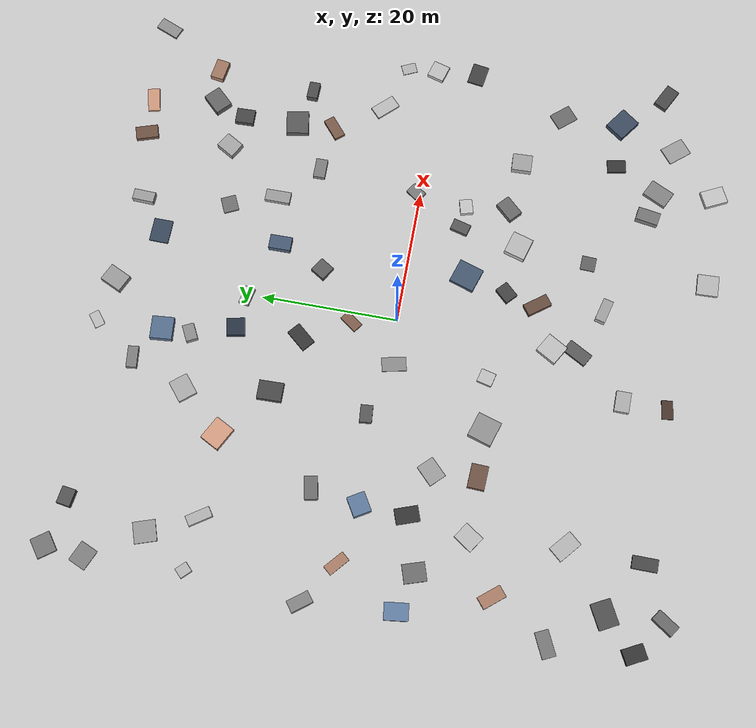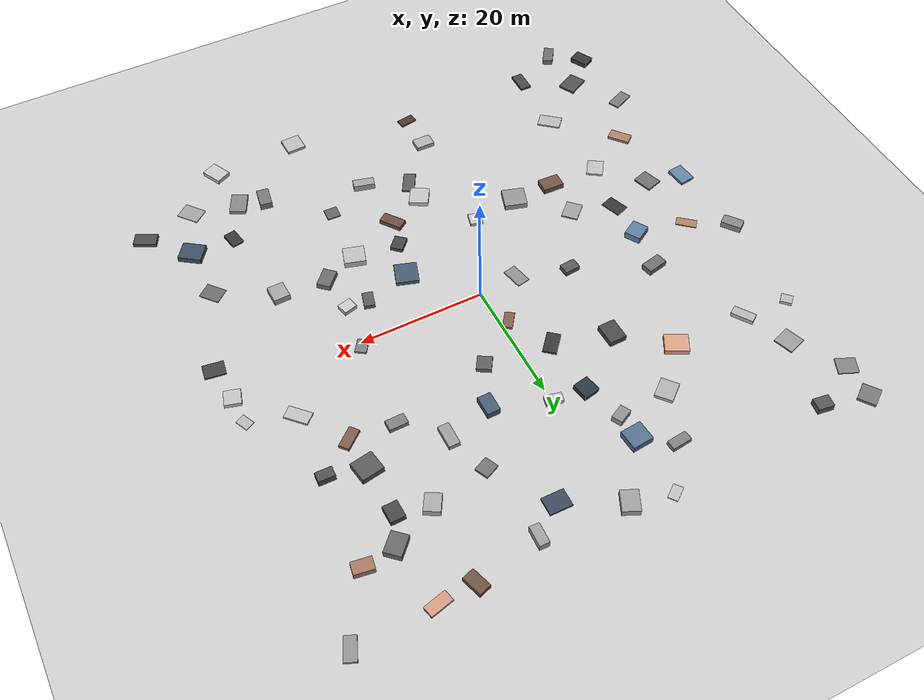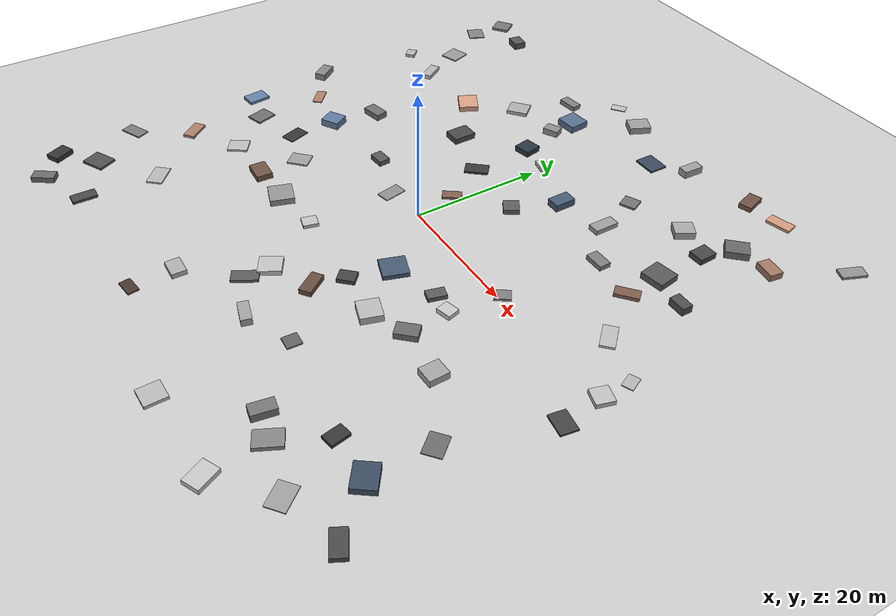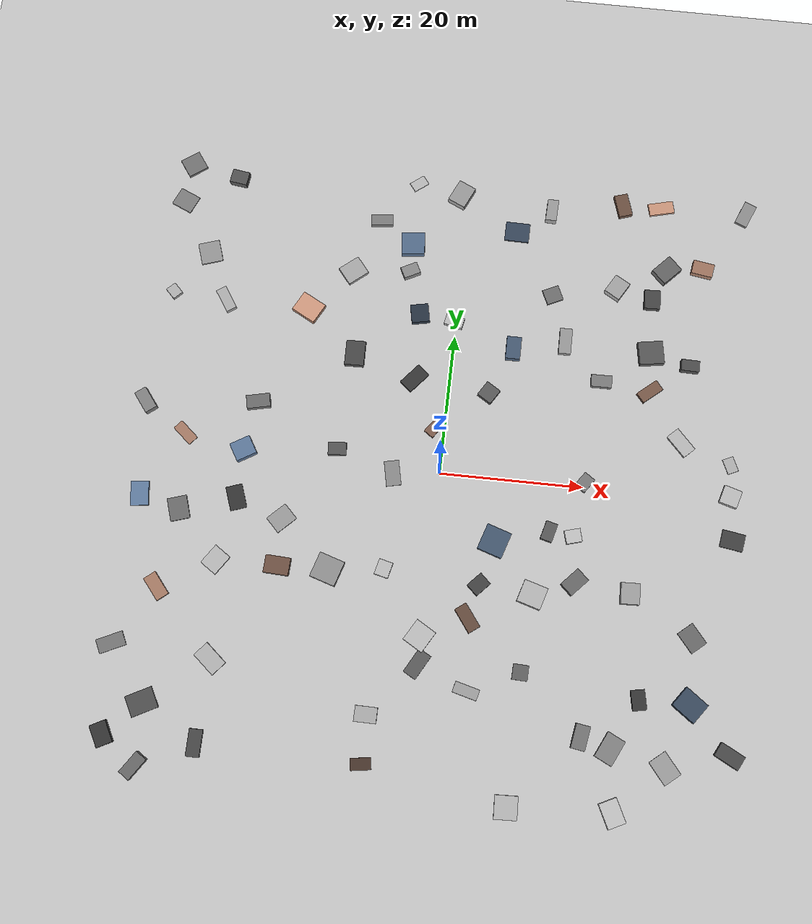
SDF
<?xml version="1.0" encoding="UTF-8"?>
<sdf version="1.9">
  <world name="world_demo_probe">
    <physics type="ode">
      <max_step_size>0.004</max_step_size>
      <real_time_factor>1.0</real_time_factor>
      <real_time_update_rate>250</real_time_update_rate>
    </physics>
    <gravity>0 0 -9.8</gravity>
    <magnetic_field>6e-06 2.3e-05 -4.2e-05</magnetic_field>
    <atmosphere type="adiabatic"/>
    <scene>
      <grid>false</grid>
      <ambient>0.4 0.4 0.4 1</ambient>
      <background>0.7 0.7 0.7 1</background>
      <shadows>true</shadows>
    </scene>
    <model name="ground_plane">
      <static>true</static>
      <link name="link">
        <collision name="collision">
          <geometry><plane><normal>0 0 1</normal><size>1 1</size></plane></geometry>
          <surface><friction><ode/></friction><bounce/><contact/></surface>
        </collision>
        <visual name="visual">
          <geometry><plane><normal>0 0 1</normal><size>500 500</size></plane></geometry>
          <material>
            <ambient>0.8 0.8 0.8 1</ambient>
            <diffuse>0.8 0.8 0.8 1</diffuse>
            <specular>0.8 0.8 0.8 1</specular>
          </material>
        </visual>
        <pose>0 0 0 0 -0 0</pose>
        <inertial><pose>0 0 0 0 -0 0</pose><mass>1</mass>
          <inertia><ixx>1</ixx><ixy>0</ixy><ixz>0</ixz><iyy>1</iyy><iyz>0</iyz><izz>1</izz></inertia>
        </inertial>
        <enable_wind>false</enable_wind>
      </link>
      <pose>0 0 0 0 -0 0</pose>
      <self_collide>false</self_collide>
    </model>
    <light name="sunUTC" type="directional">
      <pose>0 0 500 0 -0 0</pose>
      <cast_shadows>true</cast_shadows>
      <intensity>1</intensity>
      <direction>0.001 0.625 -0.78</direction>
      <diffuse>0.904 0.904 0.904 1</diffuse>
      <specular>0.271 0.271 0.271 1</specular>
      <attenuation><range>2000</range><linear>0</linear><constant>1</constant><quadratic>0</quadratic></attenuation>
      <spot><inner_angle>0</inner_angle><outer_angle>0</outer_angle><falloff>0</falloff></spot>
    </light>
    <spherical_coordinates>
      <surface_model>EARTH_WGS84</surface_model>
      <world_frame_orientation>ENU</world_frame_orientation>
      <latitude_deg>47.397971057728974</latitude_deg>
      <longitude_deg> 8.546163739800146</longitude_deg>
      <elevation>0</elevation>
    </spherical_coordinates>
    <!-- 84 statycznych brył wizualnych (tekstura przestrzenna, par? R2) -->
    <model name="tex_0">
      <static>true</static>
      <pose>-41.137 -40.159 0.403 0 0 0.478</pose>
      <link name="l">
        <visual name="v">
          <geometry><box><size>2.264 3.094 0.807</size></box></geometry>
          <material>
            <ambient>0.206 0.206 0.206 1</ambient>
            <diffuse>0.206 0.206 0.206 1</diffuse>
            <specular>0.1 0.1 0.1 1</specular>
          </material>
        </visual>
      </link>
    </model>
    <model name="tex_1">
      <static>true</static>
      <pose>-41.920 -28.083 0.104 0 0 2.013</pose>
      <link name="l">
        <visual name="v">
          <geometry><box><size>1.991 3.763 0.208</size></box></geometry>
          <material>
            <ambient>0.472 0.472 0.472 1</ambient>
            <diffuse>0.472 0.472 0.472 1</diffuse>
            <specular>0.1 0.1 0.1 1</specular>
          </material>
        </visual>
      </link>
    </model>
    <model name="tex_2">
      <static>true</static>
      <pose>-41.253 -7.342 0.228 0 0 0.120</pose>
      <link name="l">
        <visual name="v">
          <geometry><box><size>2.489 3.451 0.456</size></box></geometry>
          <material>
            <ambient>0.395 0.508 0.649 1</ambient>
            <diffuse>0.395 0.508 0.649 1</diffuse>
            <specular>0.1 0.1 0.1 1</specular>
          </material>
        </visual>
      </link>
    </model>
    <model name="tex_3">
      <static>true</static>
      <pose>-42.364 5.896 0.552 0 0 0.651</pose>
      <link name="l">
        <visual name="v">
          <geometry><box><size>1.788 3.298 1.104</size></box></geometry>
          <material>
            <ambient>0.524 0.524 0.524 1</ambient>
            <diffuse>0.524 0.524 0.524 1</diffuse>
            <specular>0.1 0.1 0.1 1</specular>
          </material>
        </visual>
      </link>
    </model>
    <model name="tex_4">
      <static>true</static>
      <pose>-40.961 22.566 0.267 0 0 2.347</pose>
      <link name="l">
        <visual name="v">
          <geometry><box><size>1.824 1.576 0.533</size></box></geometry>
          <material>
            <ambient>0.718 0.718 0.718 1</ambient>
            <diffuse>0.718 0.718 0.718 1</diffuse>
            <specular>0.1 0.1 0.1 1</specular>
          </material>
        </visual>
      </link>
    </model>
    <model name="tex_5">
      <static>true</static>
      <pose>-41.461 36.745 0.092 0 0 1.161</pose>
      <link name="l">
        <visual name="v">
          <geometry><box><size>2.701 3.118 0.185</size></box></geometry>
          <material>
            <ambient>0.507 0.507 0.507 1</ambient>
            <diffuse>0.507 0.507 0.507 1</diffuse>
            <specular>0.1 0.1 0.1 1</specular>
          </material>
        </visual>
      </link>
    </model>
    <model name="tex_6">
      <static>true</static>
      <pose>-41.051 42.476 0.215 0 0 0.624</pose>
      <link name="l">
        <visual name="v">
          <geometry><box><size>2.969 2.847 0.430</size></box></geometry>
          <material>
            <ambient>0.465 0.465 0.465 1</ambient>
            <diffuse>0.465 0.465 0.465 1</diffuse>
            <specular>0.1 0.1 0.1 1</specular>
          </material>
        </visual>
      </link>
    </model>
    <model name="tex_7">
      <static>true</static>
      <pose>-36.256 -43.765 0.451 0 0 2.549</pose>
      <link name="l">
        <visual name="v">
          <geometry><box><size>1.746 3.466 0.903</size></box></geometry>
          <material>
            <ambient>0.417 0.417 0.417 1</ambient>
            <diffuse>0.417 0.417 0.417 1</diffuse>
            <specular>0.1 0.1 0.1 1</specular>
          </material>
        </visual>
      </link>
    </model>
    <model name="tex_8">
      <static>true</static>
      <pose>-36.514 -35.487 0.184 0 0 2.053</pose>
      <link name="l">
        <visual name="v">
          <geometry><box><size>2.949 3.783 0.368</size></box></geometry>
          <material>
            <ambient>0.312 0.312 0.312 1</ambient>
            <diffuse>0.312 0.312 0.312 1</diffuse>
            <specular>0.1 0.1 0.1 1</specular>
          </material>
        </visual>
      </link>
    </model>
    <model name="tex_9">
      <static>true</static>
      <pose>-36.981 -19.903 0.218 0 0 2.257</pose>
      <link name="l">
        <visual name="v">
          <geometry><box><size>3.619 1.867 0.436</size></box></geometry>
          <material>
            <ambient>0.671 0.496 0.408 1</ambient>
            <diffuse>0.671 0.496 0.408 1</diffuse>
            <specular>0.1 0.1 0.1 1</specular>
          </material>
        </visual>
      </link>
    </model>
    <model name="tex_10">
      <static>true</static>
      <pose>-35.586 -8.854 0.146 0 0 1.880</pose>
      <link name="l">
        <visual name="v">
          <geometry><box><size>3.256 2.732 0.292</size></box></geometry>
          <material>
            <ambient>0.431 0.431 0.431 1</ambient>
            <diffuse>0.431 0.431 0.431 1</diffuse>
            <specular>0.1 0.1 0.1 1</specular>
          </material>
        </visual>
      </link>
    </model>
    <model name="tex_11">
      <static>true</static>
      <pose>-36.247 1.969 0.081 0 0 2.430</pose>
      <link name="l">
        <visual name="v">
          <geometry><box><size>3.335 1.543 0.161</size></box></geometry>
          <material>
            <ambient>0.673 0.498 0.410 1</ambient>
            <diffuse>0.673 0.498 0.410 1</diffuse>
            <specular>0.1 0.1 0.1 1</specular>
          </material>
        </visual>
      </link>
    </model>
    <model name="tex_12">
      <static>true</static>
      <pose>-33.303 22.082 0.358 0 0 0.588</pose>
      <link name="l">
        <visual name="v">
          <geometry><box><size>1.540 3.562 0.716</size></box></geometry>
          <material>
            <ambient>0.703 0.703 0.703 1</ambient>
            <diffuse>0.703 0.703 0.703 1</diffuse>
            <specular>0.1 0.1 0.1 1</specular>
          </material>
        </visual>
      </link>
    </model>
    <model name="tex_13">
      <static>true</static>
      <pose>-36.687 29.087 0.121 0 0 1.892</pose>
      <link name="l">
        <visual name="v">
          <geometry><box><size>3.201 3.079 0.242</size></box></geometry>
          <material>
            <ambient>0.605 0.605 0.605 1</ambient>
            <diffuse>0.605 0.605 0.605 1</diffuse>
            <specular>0.1 0.1 0.1 1</specular>
          </material>
        </visual>
      </link>
    </model>
    <model name="tex_14">
      <static>true</static>
      <pose>-33.922 40.861 0.561 0 0 2.995</pose>
      <link name="l">
        <visual name="v">
          <geometry><box><size>2.501 1.990 1.123</size></box></geometry>
          <material>
            <ambient>0.331 0.331 0.331 1</ambient>
            <diffuse>0.331 0.331 0.331 1</diffuse>
            <specular>0.1 0.1 0.1 1</specular>
          </material>
        </visual>
      </link>
    </model>
    <model name="tex_15">
      <static>true</static>
      <pose>-28.677 -40.035 0.203 0 0 3.134</pose>
      <link name="l">
        <visual name="v">
          <geometry><box><size>1.850 3.663 0.405</size></box></geometry>
          <material>
            <ambient>0.281 0.281 0.281 1</ambient>
            <diffuse>0.281 0.281 0.281 1</diffuse>
            <specular>0.1 0.1 0.1 1</specular>
          </material>
        </visual>
      </link>
    </model>
    <model name="tex_16">
      <static>true</static>
      <pose>-28.266 -28.858 0.131 0 0 0.863</pose>
      <link name="l">
        <visual name="v">
          <geometry><box><size>2.425 3.794 0.262</size></box></geometry>
          <material>
            <ambient>0.716 0.716 0.716 1</ambient>
            <diffuse>0.716 0.716 0.716 1</diffuse>
            <specular>0.1 0.1 0.1 1</specular>
          </material>
        </visual>
      </link>
    </model>
    <model name="tex_17">
      <static>true</static>
      <pose>-29.438 -15.434 0.164 0 0 2.548</pose>
      <link name="l">
        <visual name="v">
          <geometry><box><size>2.661 3.119 0.328</size></box></geometry>
          <material>
            <ambient>0.740 0.740 0.740 1</ambient>
            <diffuse>0.740 0.740 0.740 1</diffuse>
            <specular>0.1 0.1 0.1 1</specular>
          </material>
        </visual>
      </link>
    </model>
    <model name="tex_18">
      <static>true</static>
      <pose>-27.859 -6.459 0.067 0 0 1.911</pose>
      <link name="l">
        <visual name="v">
          <geometry><box><size>3.435 2.317 0.134</size></box></geometry>
          <material>
            <ambient>0.209 0.209 0.209 1</ambient>
            <diffuse>0.209 0.209 0.209 1</diffuse>
            <specular>0.1 0.1 0.1 1</specular>
          </material>
        </visual>
      </link>
    </model>
    <model name="tex_19">
      <static>true</static>
      <pose>-27.711 0.384 0.590 0 0 2.111</pose>
      <link name="l">
        <visual name="v">
          <geometry><box><size>2.654 2.963 1.179</size></box></geometry>
          <material>
            <ambient>0.379 0.487 0.623 1</ambient>
            <diffuse>0.379 0.487 0.623 1</diffuse>
            <specular>0.1 0.1 0.1 1</specular>
          </material>
        </visual>
      </link>
    </model>
    <model name="tex_20">
      <static>true</static>
      <pose>-26.583 7.452 0.493 0 0 1.788</pose>
      <link name="l">
        <visual name="v">
          <geometry><box><size>1.907 3.305 0.985</size></box></geometry>
          <material>
            <ambient>0.435 0.435 0.435 1</ambient>
            <diffuse>0.435 0.435 0.435 1</diffuse>
            <specular>0.1 0.1 0.1 1</specular>
          </material>
        </visual>
      </link>
    </model>
    <model name="tex_21">
      <static>true</static>
      <pose>-20.853 -15.336 0.459 0 0 3.095</pose>
      <link name="l">
        <visual name="v">
          <geometry><box><size>3.473 2.453 0.918</size></box></geometry>
          <material>
            <ambient>0.443 0.327 0.270 1</ambient>
            <diffuse>0.443 0.327 0.270 1</diffuse>
            <specular>0.1 0.1 0.1 1</specular>
          </material>
        </visual>
      </link>
    </model>
    <model name="tex_22">
      <static>true</static>
      <pose>-21.170 -8.746 0.129 0 0 2.346</pose>
      <link name="l">
        <visual name="v">
          <geometry><box><size>2.642 3.262 0.258</size></box></geometry>
          <material>
            <ambient>0.623 0.623 0.623 1</ambient>
            <diffuse>0.623 0.623 0.623 1</diffuse>
            <specular>0.1 0.1 0.1 1</specular>
          </material>
        </visual>
      </link>
    </model>
    <model name="tex_23">
      <static>true</static>
      <pose>-21.289 22.067 0.421 0 0 1.085</pose>
      <link name="l">
        <visual name="v">
          <geometry><box><size>3.061 3.689 0.843</size></box></geometry>
          <material>
            <ambient>0.844 0.624 0.514 1</ambient>
            <diffuse>0.844 0.624 0.514 1</diffuse>
            <specular>0.1 0.1 0.1 1</specular>
          </material>
        </visual>
      </link>
    </model>
    <model name="tex_24">
      <static>true</static>
      <pose>-13.934 -15.150 0.478 0 0 1.268</pose>
      <link name="l">
        <visual name="v">
          <geometry><box><size>3.579 3.681 0.956</size></box></geometry>
          <material>
            <ambient>0.580 0.580 0.580 1</ambient>
            <diffuse>0.580 0.580 0.580 1</diffuse>
            <specular>0.1 0.1 0.1 1</specular>
          </material>
        </visual>
      </link>
    </model>
    <model name="tex_25">
      <static>true</static>
      <pose>-14.687 1.809 0.409 0 0 0.085</pose>
      <link name="l">
        <visual name="v">
          <geometry><box><size>2.544 1.776 0.818</size></box></geometry>
          <material>
            <ambient>0.344 0.344 0.344 1</ambient>
            <diffuse>0.344 0.344 0.344 1</diffuse>
            <specular>0.1 0.1 0.1 1</specular>
          </material>
        </visual>
      </link>
    </model>
    <model name="tex_26">
      <static>true</static>
      <pose>-13.866 15.922 0.478 0 0 0.018</pose>
      <link name="l">
        <visual name="v">
          <geometry><box><size>2.734 3.575 0.956</size></box></geometry>
          <material>
            <ambient>0.285 0.285 0.285 1</ambient>
            <diffuse>0.285 0.285 0.285 1</diffuse>
            <specular>0.1 0.1 0.1 1</specular>
          </material>
        </visual>
      </link>
    </model>
    <model name="tex_27">
      <static>true</static>
      <pose>-15.593 28.385 0.292 0 0 0.689</pose>
      <link name="l">
        <visual name="v">
          <geometry><box><size>3.279 2.839 0.583</size></box></geometry>
          <material>
            <ambient>0.681 0.681 0.681 1</ambient>
            <diffuse>0.681 0.681 0.681 1</diffuse>
            <specular>0.1 0.1 0.1 1</specular>
          </material>
        </visual>
      </link>
    </model>
    <model name="tex_28">
      <static>true</static>
      <pose>-12.397 36.555 0.390 0 0 1.678</pose>
      <link name="l">
        <visual name="v">
          <geometry><box><size>1.529 3.150 0.780</size></box></geometry>
          <material>
            <ambient>0.502 0.502 0.502 1</ambient>
            <diffuse>0.502 0.502 0.502 1</diffuse>
            <specular>0.1 0.1 0.1 1</specular>
          </material>
        </visual>
      </link>
    </model>
    <model name="tex_29">
      <static>true</static>
      <pose>-6.324 -40.404 0.102 0 0 1.721</pose>
      <link name="l">
        <visual name="v">
          <geometry><box><size>1.626 2.769 0.204</size></box></geometry>
          <material>
            <ambient>0.292 0.216 0.178 1</ambient>
            <diffuse>0.292 0.216 0.178 1</diffuse>
            <specular>0.1 0.1 0.1 1</specular>
          </material>
        </visual>
      </link>
    </model>
    <model name="tex_30">
      <static>true</static>
      <pose>-6.416 -33.925 0.374 0 0 1.560</pose>
      <link name="l">
        <visual name="v">
          <geometry><box><size>2.135 3.033 0.748</size></box></geometry>
          <material>
            <ambient>0.683 0.683 0.683 1</ambient>
            <diffuse>0.683 0.683 0.683 1</diffuse>
            <specular>0.1 0.1 0.1 1</specular>
          </material>
        </visual>
      </link>
    </model>
    <model name="tex_31">
      <static>true</static>
      <pose>-6.298 -14.206 0.265 0 0 1.333</pose>
      <link name="l">
        <visual name="v">
          <geometry><box><size>2.227 1.981 0.530</size></box></geometry>
          <material>
            <ambient>0.757 0.757 0.757 1</ambient>
            <diffuse>0.757 0.757 0.757 1</diffuse>
            <specular>0.1 0.1 0.1 1</specular>
          </material>
        </visual>
      </link>
    </model>
    <model name="tex_32">
      <static>true</static>
      <pose>-6.615 -0.742 0.076 0 0 0.210</pose>
      <link name="l">
        <visual name="v">
          <geometry><box><size>2.084 3.562 0.151</size></box></geometry>
          <material>
            <ambient>0.556 0.556 0.556 1</ambient>
            <diffuse>0.556 0.556 0.556 1</diffuse>
            <specular>0.1 0.1 0.1 1</specular>
          </material>
        </visual>
      </link>
    </model>
    <model name="tex_33">
      <static>true</static>
      <pose>-5.055 13.235 0.173 0 0 2.437</pose>
      <link name="l">
        <visual name="v">
          <geometry><box><size>2.130 3.598 0.346</size></box></geometry>
          <material>
            <ambient>0.218 0.218 0.218 1</ambient>
            <diffuse>0.218 0.218 0.218 1</diffuse>
            <specular>0.1 0.1 0.1 1</specular>
          </material>
        </visual>
      </link>
    </model>
    <model name="tex_34">
      <static>true</static>
      <pose>-5.336 22.822 0.455 0 0 1.771</pose>
      <link name="l">
        <visual name="v">
          <geometry><box><size>2.647 2.567 0.911</size></box></geometry>
          <material>
            <ambient>0.162 0.208 0.266 1</ambient>
            <diffuse>0.162 0.208 0.266 1</diffuse>
            <specular>0.1 0.1 0.1 1</specular>
          </material>
        </visual>
      </link>
    </model>
    <model name="tex_35">
      <static>true</static>
      <pose>-7.390 29.149 0.509 0 0 2.042</pose>
      <link name="l">
        <visual name="v">
          <geometry><box><size>1.694 2.439 1.017</size></box></geometry>
          <material>
            <ambient>0.559 0.559 0.559 1</ambient>
            <diffuse>0.559 0.559 0.559 1</diffuse>
            <specular>0.1 0.1 0.1 1</specular>
          </material>
        </visual>
      </link>
    </model>
    <model name="tex_36">
      <static>true</static>
      <pose>-7.456 33.255 0.553 0 0 0.085</pose>
      <link name="l">
        <visual name="v">
          <geometry><box><size>3.316 3.214 1.106</size></box></geometry>
          <material>
            <ambient>0.339 0.436 0.557 1</ambient>
            <diffuse>0.339 0.436 0.557 1</diffuse>
            <specular>0.1 0.1 0.1 1</specular>
          </material>
        </visual>
      </link>
    </model>
    <model name="tex_37">
      <static>true</static>
      <pose>-7.641 43.052 0.068 0 0 0.654</pose>
      <link name="l">
        <visual name="v">
          <geometry><box><size>2.350 1.506 0.135</size></box></geometry>
          <material>
            <ambient>0.744 0.744 0.744 1</ambient>
            <diffuse>0.744 0.744 0.744 1</diffuse>
            <specular>0.1 0.1 0.1 1</specular>
          </material>
        </visual>
      </link>
    </model>
    <model name="tex_38">
      <static>true</static>
      <pose>-0.285 -26.573 0.219 0 0 1.063</pose>
      <link name="l">
        <visual name="v">
          <geometry><box><size>3.783 1.981 0.438</size></box></geometry>
          <material>
            <ambient>0.361 0.361 0.361 1</ambient>
            <diffuse>0.361 0.361 0.361 1</diffuse>
            <specular>0.1 0.1 0.1 1</specular>
          </material>
        </visual>
      </link>
    </model>
    <model name="tex_39">
      <static>true</static>
      <pose>-0.397 -22.822 0.357 0 0 2.612</pose>
      <link name="l">
        <visual name="v">
          <geometry><box><size>3.120 3.303 0.714</size></box></geometry>
          <material>
            <ambient>0.760 0.760 0.760 1</ambient>
            <diffuse>0.760 0.760 0.760 1</diffuse>
            <specular>0.1 0.1 0.1 1</specular>
          </material>
        </visual>
      </link>
    </model>
    <model name="tex_40">
      <static>true</static>
      <pose>-1.386 6.486 0.192 0 0 2.519</pose>
      <link name="l">
        <visual name="v">
          <geometry><box><size>1.553 2.902 0.383</size></box></geometry>
          <material>
            <ambient>0.506 0.374 0.308 1</ambient>
            <diffuse>0.506 0.374 0.308 1</diffuse>
            <specular>0.1 0.1 0.1 1</specular>
          </material>
        </visual>
      </link>
    </model>
    <model name="tex_41">
      <static>true</static>
      <pose>-0.334 22.233 0.320 0 0 2.941</pose>
      <link name="l">
        <visual name="v">
          <geometry><box><size>2.676 1.504 0.640</size></box></geometry>
          <material>
            <ambient>0.755 0.755 0.755 1</ambient>
            <diffuse>0.755 0.755 0.755 1</diffuse>
            <specular>0.1 0.1 0.1 1</specular>
          </material>
        </visual>
      </link>
    </model>
    <model name="tex_42">
      <static>true</static>
      <pose>-1.191 41.675 0.541 0 0 2.709</pose>
      <link name="l">
        <visual name="v">
          <geometry><box><size>2.661 3.355 1.083</size></box></geometry>
          <material>
            <ambient>0.618 0.618 0.618 1</ambient>
            <diffuse>0.618 0.618 0.618 1</diffuse>
            <specular>0.1 0.1 0.1 1</specular>
          </material>
        </visual>
      </link>
    </model>
    <model name="tex_43">
      <static>true</static>
      <pose>6.593 -29.442 0.547 0 0 2.887</pose>
      <link name="l">
        <visual name="v">
          <geometry><box><size>3.452 1.522 1.093</size></box></geometry>
          <material>
            <ambient>0.636 0.636 0.636 1</ambient>
            <diffuse>0.636 0.636 0.636 1</diffuse>
            <specular>0.1 0.1 0.1 1</specular>
          </material>
        </visual>
      </link>
    </model>
    <model name="tex_44">
      <static>true</static>
      <pose>5.807 -19.749 0.394 0 0 0.636</pose>
      <link name="l">
        <visual name="v">
          <geometry><box><size>1.811 3.758 0.787</size></box></geometry>
          <material>
            <ambient>0.409 0.302 0.249 1</ambient>
            <diffuse>0.409 0.302 0.249 1</diffuse>
            <specular>0.1 0.1 0.1 1</specular>
          </material>
        </visual>
      </link>
    </model>
    <model name="tex_45">
      <static>true</static>
      <pose>6.906 -15.021 0.322 0 0 2.391</pose>
      <link name="l">
        <visual name="v">
          <geometry><box><size>2.010 2.539 0.644</size></box></geometry>
          <material>
            <ambient>0.266 0.266 0.266 1</ambient>
            <diffuse>0.266 0.266 0.266 1</diffuse>
            <specular>0.1 0.1 0.1 1</specular>
          </material>
        </visual>
      </link>
    </model>
    <model name="tex_46">
      <static>true</static>
      <pose>8.464 -8.837 0.347 0 0 1.259</pose>
      <link name="l">
        <visual name="v">
          <geometry><box><size>3.747 3.598 0.695</size></box></geometry>
          <material>
            <ambient>0.272 0.349 0.447 1</ambient>
            <diffuse>0.272 0.349 0.447 1</diffuse>
            <specular>0.1 0.1 0.1 1</specular>
          </material>
        </visual>
      </link>
    </model>
    <model name="tex_47">
      <static>true</static>
      <pose>5.648 12.154 0.392 0 0 2.582</pose>
      <link name="l">
        <visual name="v">
          <geometry><box><size>2.287 2.346 0.784</size></box></geometry>
          <material>
            <ambient>0.366 0.366 0.366 1</ambient>
            <diffuse>0.366 0.366 0.366 1</diffuse>
            <specular>0.1 0.1 0.1 1</specular>
          </material>
        </visual>
      </link>
    </model>
    <model name="tex_48">
      <static>true</static>
      <pose>8.478 19.022 0.558 0 0 0.003</pose>
      <link name="l">
        <visual name="v">
          <geometry><box><size>2.073 3.250 1.116</size></box></geometry>
          <material>
            <ambient>0.279 0.359 0.459 1</ambient>
            <diffuse>0.279 0.359 0.459 1</diffuse>
            <specular>0.1 0.1 0.1 1</specular>
          </material>
        </visual>
      </link>
    </model>
    <model name="tex_49">
      <static>true</static>
      <pose>7.433 36.927 0.137 0 0 3.126</pose>
      <link name="l">
        <visual name="v">
          <geometry><box><size>3.517 2.835 0.274</size></box></geometry>
          <material>
            <ambient>0.220 0.282 0.361 1</ambient>
            <diffuse>0.220 0.282 0.361 1</diffuse>
            <specular>0.1 0.1 0.1 1</specular>
          </material>
        </visual>
      </link>
    </model>
    <model name="tex_50">
      <static>true</static>
      <pose>13.343 -43.893 0.234 0 0 1.603</pose>
      <link name="l">
        <visual name="v">
          <geometry><box><size>3.128 3.114 0.468</size></box></geometry>
          <material>
            <ambient>0.727 0.727 0.727 1</ambient>
            <diffuse>0.727 0.727 0.727 1</diffuse>
            <specular>0.1 0.1 0.1 1</specular>
          </material>
        </visual>
      </link>
    </model>
    <model name="tex_51">
      <static>true</static>
      <pose>13.652 -26.212 0.096 0 0 1.529</pose>
      <link name="l">
        <visual name="v">
          <geometry><box><size>2.124 2.134 0.193</size></box></geometry>
          <material>
            <ambient>0.388 0.388 0.388 1</ambient>
            <diffuse>0.388 0.388 0.388 1</diffuse>
            <specular>0.1 0.1 0.1 1</specular>
          </material>
        </visual>
      </link>
    </model>
    <model name="tex_52">
      <static>true</static>
      <pose>14.297 -15.667 0.528 0 0 2.851</pose>
      <link name="l">
        <visual name="v">
          <geometry><box><size>3.393 3.142 1.056</size></box></geometry>
          <material>
            <ambient>0.731 0.731 0.731 1</ambient>
            <diffuse>0.731 0.731 0.731 1</diffuse>
            <specular>0.1 0.1 0.1 1</specular>
          </material>
        </visual>
      </link>
    </model>
    <model name="tex_53">
      <static>true</static>
      <pose>15.825 -6.716 0.339 0 0 2.883</pose>
      <link name="l">
        <visual name="v">
          <geometry><box><size>1.672 2.667 0.679</size></box></geometry>
          <material>
            <ambient>0.356 0.356 0.356 1</ambient>
            <diffuse>0.356 0.356 0.356 1</diffuse>
            <specular>0.1 0.1 0.1 1</specular>
          </material>
        </visual>
      </link>
    </model>
    <model name="tex_54">
      <static>true</static>
      <pose>15.767 20.906 0.376 0 0 0.000</pose>
      <link name="l">
        <visual name="v">
          <geometry><box><size>1.745 3.745 0.753</size></box></geometry>
          <material>
            <ambient>0.614 0.614 0.614 1</ambient>
            <diffuse>0.614 0.614 0.614 1</diffuse>
            <specular>0.1 0.1 0.1 1</specular>
          </material>
        </visual>
      </link>
    </model>
    <model name="tex_55">
      <static>true</static>
      <pose>13.403 27.801 0.150 0 0 0.441</pose>
      <link name="l">
        <visual name="v">
          <geometry><box><size>2.420 2.242 0.300</size></box></geometry>
          <material>
            <ambient>0.447 0.447 0.447 1</ambient>
            <diffuse>0.447 0.447 0.447 1</diffuse>
            <specular>0.1 0.1 0.1 1</specular>
          </material>
        </visual>
      </link>
    </model>
    <model name="tex_56">
      <static>true</static>
      <pose>12.143 40.527 0.580 0 0 1.531</pose>
      <link name="l">
        <visual name="v">
          <geometry><box><size>3.204 1.557 1.160</size></box></geometry>
          <material>
            <ambient>0.623 0.623 0.623 1</ambient>
            <diffuse>0.623 0.623 0.623 1</diffuse>
            <specular>0.1 0.1 0.1 1</specular>
          </material>
        </visual>
      </link>
    </model>
    <model name="tex_57">
      <static>true</static>
      <pose>22.333 -33.831 0.572 0 0 2.979</pose>
      <link name="l">
        <visual name="v">
          <geometry><box><size>1.933 3.334 1.144</size></box></geometry>
          <material>
            <ambient>0.463 0.463 0.463 1</ambient>
            <diffuse>0.463 0.463 0.463 1</diffuse>
            <specular>0.1 0.1 0.1 1</specular>
          </material>
        </visual>
      </link>
    </model>
    <model name="tex_58">
      <static>true</static>
      <pose>19.888 -13.357 0.474 0 0 0.825</pose>
      <link name="l">
        <visual name="v">
          <geometry><box><size>3.219 2.189 0.948</size></box></geometry>
          <material>
            <ambient>0.417 0.417 0.417 1</ambient>
            <diffuse>0.417 0.417 0.417 1</diffuse>
            <specular>0.1 0.1 0.1 1</specular>
          </material>
        </visual>
      </link>
    </model>
    <model name="tex_59">
      <static>true</static>
      <pose>19.192 -7.010 0.350 0 0 1.835</pose>
      <link name="l">
        <visual name="v">
          <geometry><box><size>1.870 2.213 0.700</size></box></geometry>
          <material>
            <ambient>0.779 0.779 0.779 1</ambient>
            <diffuse>0.779 0.779 0.779 1</diffuse>
            <specular>0.1 0.1 0.1 1</specular>
          </material>
        </visual>
      </link>
    </model>
    <model name="tex_60">
      <static>true</static>
      <pose>20.214 0.745 0.181 0 0 2.533</pose>
      <link name="l">
        <visual name="v">
          <geometry><box><size>1.776 2.357 0.361</size></box></geometry>
          <material>
            <ambient>0.489 0.489 0.489 1</ambient>
            <diffuse>0.489 0.489 0.489 1</diffuse>
            <specular>0.1 0.1 0.1 1</specular>
          </material>
        </visual>
      </link>
    </model>
    <model name="tex_61">
      <static>true</static>
      <pose>21.348 15.541 0.371 0 0 0.008</pose>
      <link name="l">
        <visual name="v">
          <geometry><box><size>2.934 1.750 0.742</size></box></geometry>
          <material>
            <ambient>0.497 0.497 0.497 1</ambient>
            <diffuse>0.497 0.497 0.497 1</diffuse>
            <specular>0.1 0.1 0.1 1</specular>
          </material>
        </visual>
      </link>
    </model>
    <model name="tex_62">
      <static>true</static>
      <pose>22.502 29.656 0.555 0 0 1.040</pose>
      <link name="l">
        <visual name="v">
          <geometry><box><size>2.904 2.452 1.110</size></box></geometry>
          <material>
            <ambient>0.657 0.657 0.657 1</ambient>
            <diffuse>0.657 0.657 0.657 1</diffuse>
            <specular>0.1 0.1 0.1 1</specular>
          </material>
        </visual>
      </link>
    </model>
    <model name="tex_63">
      <static>true</static>
      <pose>22.476 42.545 0.385 0 0 1.880</pose>
      <link name="l">
        <visual name="v">
          <geometry><box><size>3.311 1.956 0.771</size></box></geometry>
          <material>
            <ambient>0.434 0.321 0.264 1</ambient>
            <diffuse>0.434 0.321 0.264 1</diffuse>
            <specular>0.1 0.1 0.1 1</specular>
          </material>
        </visual>
      </link>
    </model>
    <model name="tex_64">
      <static>true</static>
      <pose>27.299 -43.150 0.357 0 0 0.456</pose>
      <link name="l">
        <visual name="v">
          <geometry><box><size>2.548 3.463 0.713</size></box></geometry>
          <material>
            <ambient>0.777 0.777 0.777 1</ambient>
            <diffuse>0.777 0.777 0.777 1</diffuse>
            <specular>0.1 0.1 0.1 1</specular>
          </material>
        </visual>
      </link>
    </model>
    <model name="tex_65">
      <static>true</static>
      <pose>26.384 -34.948 0.294 0 0 1.118</pose>
      <link name="l">
        <visual name="v">
          <geometry><box><size>3.752 2.639 0.588</size></box></geometry>
          <material>
            <ambient>0.521 0.521 0.521 1</ambient>
            <diffuse>0.521 0.521 0.521 1</diffuse>
            <specular>0.1 0.1 0.1 1</specular>
          </material>
        </visual>
      </link>
    </model>
    <model name="tex_66">
      <static>true</static>
      <pose>29.757 -28.190 0.229 0 0 0.189</pose>
      <link name="l">
        <visual name="v">
          <geometry><box><size>1.925 2.761 0.458</size></box></geometry>
          <material>
            <ambient>0.213 0.213 0.213 1</ambient>
            <diffuse>0.213 0.213 0.213 1</diffuse>
            <specular>0.1 0.1 0.1 1</specular>
          </material>
        </visual>
      </link>
    </model>
    <model name="tex_67">
      <static>true</static>
      <pose>27.542 -14.112 0.532 0 0 1.606</pose>
      <link name="l">
        <visual name="v">
          <geometry><box><size>2.920 2.596 1.063</size></box></geometry>
          <material>
            <ambient>0.643 0.643 0.643 1</ambient>
            <diffuse>0.643 0.643 0.643 1</diffuse>
            <specular>0.1 0.1 0.1 1</specular>
          </material>
        </visual>
      </link>
    </model>
    <model name="tex_68">
      <static>true</static>
      <pose>28.316 14.783 0.268 0 0 0.704</pose>
      <link name="l">
        <visual name="v">
          <geometry><box><size>3.447 1.647 0.537</size></box></geometry>
          <material>
            <ambient>0.487 0.360 0.296 1</ambient>
            <diffuse>0.487 0.360 0.296 1</diffuse>
            <specular>0.1 0.1 0.1 1</specular>
          </material>
        </visual>
      </link>
    </model>
    <model name="tex_69">
      <static>true</static>
      <pose>28.019 20.385 0.502 0 0 1.736</pose>
      <link name="l">
        <visual name="v">
          <geometry><box><size>3.315 3.519 1.004</size></box></geometry>
          <material>
            <ambient>0.348 0.348 0.348 1</ambient>
            <diffuse>0.348 0.348 0.348 1</diffuse>
            <specular>0.1 0.1 0.1 1</specular>
          </material>
        </visual>
      </link>
    </model>
    <model name="tex_70">
      <static>true</static>
      <pose>27.672 28.424 0.450 0 0 0.031</pose>
      <link name="l">
        <visual name="v">
          <geometry><box><size>2.253 2.770 0.900</size></box></geometry>
          <material>
            <ambient>0.276 0.276 0.276 1</ambient>
            <diffuse>0.276 0.276 0.276 1</diffuse>
            <specular>0.1 0.1 0.1 1</specular>
          </material>
        </visual>
      </link>
    </model>
    <model name="tex_71">
      <static>true</static>
      <pose>29.434 33.031 0.560 0 0 2.381</pose>
      <link name="l">
        <visual name="v">
          <geometry><box><size>2.633 3.348 1.120</size></box></geometry>
          <material>
            <ambient>0.403 0.403 0.403 1</ambient>
            <diffuse>0.403 0.403 0.403 1</diffuse>
            <specular>0.1 0.1 0.1 1</specular>
          </material>
        </visual>
      </link>
    </model>
    <model name="tex_72">
      <static>true</static>
      <pose>28.078 42.825 0.191 0 0 0.244</pose>
      <link name="l">
        <visual name="v">
          <geometry><box><size>3.638 1.785 0.382</size></box></geometry>
          <material>
            <ambient>0.818 0.605 0.498 1</ambient>
            <diffuse>0.818 0.605 0.498 1</diffuse>
            <specular>0.1 0.1 0.1 1</specular>
          </material>
        </visual>
      </link>
    </model>
    <model name="tex_73">
      <static>true</static>
      <pose>33.896 -36.704 0.078 0 0 0.688</pose>
      <link name="l">
        <visual name="v">
          <geometry><box><size>2.690 3.631 0.156</size></box></geometry>
          <material>
            <ambient>0.627 0.627 0.627 1</ambient>
            <diffuse>0.627 0.627 0.627 1</diffuse>
            <specular>0.1 0.1 0.1 1</specular>
          </material>
        </visual>
      </link>
    </model>
    <model name="tex_74">
      <static>true</static>
      <pose>36.597 -28.145 0.463 0 0 2.516</pose>
      <link name="l">
        <visual name="v">
          <geometry><box><size>3.712 3.161 0.925</size></box></geometry>
          <material>
            <ambient>0.229 0.294 0.376 1</ambient>
            <diffuse>0.229 0.294 0.376 1</diffuse>
            <specular>0.1 0.1 0.1 1</specular>
          </material>
        </visual>
      </link>
    </model>
    <model name="tex_75">
      <static>true</static>
      <pose>36.435 -19.221 0.069 0 0 2.272</pose>
      <link name="l">
        <visual name="v">
          <geometry><box><size>3.292 2.567 0.138</size></box></geometry>
          <material>
            <ambient>0.423 0.423 0.423 1</ambient>
            <diffuse>0.423 0.423 0.423 1</diffuse>
            <specular>0.1 0.1 0.1 1</specular>
          </material>
        </visual>
      </link>
    </model>
    <model name="tex_76">
      <static>true</static>
      <pose>33.193 7.809 0.176 0 0 2.329</pose>
      <link name="l">
        <visual name="v">
          <geometry><box><size>3.752 2.029 0.352</size></box></geometry>
          <material>
            <ambient>0.740 0.740 0.740 1</ambient>
            <diffuse>0.740 0.740 0.740 1</diffuse>
            <specular>0.1 0.1 0.1 1</specular>
          </material>
        </visual>
      </link>
    </model>
    <model name="tex_77">
      <static>true</static>
      <pose>33.668 19.025 0.583 0 0 3.123</pose>
      <link name="l">
        <visual name="v">
          <geometry><box><size>2.562 1.621 1.166</size></box></geometry>
          <material>
            <ambient>0.305 0.305 0.305 1</ambient>
            <diffuse>0.305 0.305 0.305 1</diffuse>
            <specular>0.1 0.1 0.1 1</specular>
          </material>
        </visual>
      </link>
    </model>
    <model name="tex_78">
      <static>true</static>
      <pose>34.603 33.820 0.508 0 0 1.416</pose>
      <link name="l">
        <visual name="v">
          <geometry><box><size>1.984 3.033 1.016</size></box></geometry>
          <material>
            <ambient>0.641 0.474 0.390 1</ambient>
            <diffuse>0.641 0.474 0.390 1</diffuse>
            <specular>0.1 0.1 0.1 1</specular>
          </material>
        </visual>
      </link>
    </model>
    <model name="tex_79">
      <static>true</static>
      <pose>42.257 -34.211 0.342 0 0 1.094</pose>
      <link name="l">
        <visual name="v">
          <geometry><box><size>2.052 3.627 0.684</size></box></geometry>
          <material>
            <ambient>0.288 0.288 0.288 1</ambient>
            <diffuse>0.288 0.288 0.288 1</diffuse>
            <specular>0.1 0.1 0.1 1</specular>
          </material>
        </visual>
      </link>
    </model>
    <model name="tex_80">
      <static>true</static>
      <pose>41.149 -5.266 0.133 0 0 2.992</pose>
      <link name="l">
        <visual name="v">
          <geometry><box><size>3.230 2.439 0.266</size></box></geometry>
          <material>
            <ambient>0.259 0.259 0.259 1</ambient>
            <diffuse>0.259 0.259 0.259 1</diffuse>
            <specular>0.1 0.1 0.1 1</specular>
          </material>
        </visual>
      </link>
    </model>
    <model name="tex_81">
      <static>true</static>
      <pose>40.486 0.810 0.338 0 0 1.288</pose>
      <link name="l">
        <visual name="v">
          <geometry><box><size>2.543 2.543 0.676</size></box></geometry>
          <material>
            <ambient>0.755 0.755 0.755 1</ambient>
            <diffuse>0.755 0.755 0.755 1</diffuse>
            <specular>0.1 0.1 0.1 1</specular>
          </material>
        </visual>
      </link>
    </model>
    <model name="tex_82">
      <static>true</static>
      <pose>40.320 5.360 0.070 0 0 2.001</pose>
      <link name="l">
        <visual name="v">
          <geometry><box><size>2.173 1.579 0.140</size></box></geometry>
          <material>
            <ambient>0.709 0.709 0.709 1</ambient>
            <diffuse>0.709 0.709 0.709 1</diffuse>
            <specular>0.1 0.1 0.1 1</specular>
          </material>
        </visual>
      </link>
    </model>
    <model name="tex_83">
      <static>true</static>
      <pose>40.451 43.166 0.193 0 0 1.181</pose>
      <link name="l">
        <visual name="v">
          <geometry><box><size>3.585 1.822 0.385</size></box></geometry>
          <material>
            <ambient>0.570 0.570 0.570 1</ambient>
            <diffuse>0.570 0.570 0.570 1</diffuse>
            <specular>0.1 0.1 0.1 1</specular>
          </material>
        </visual>
      </link>
    </model>
    <!-- R2 SONDA: kamera filmowa statyczna 1280x720@30 always_on (marginalny koszt renderu) -->
    <model name="film_cam">
      <static>true</static>
      <pose>14 -14 6 0 0.30 2.356</pose>
      <link name="l">
        <sensor name="film" type="camera">
          <pose>0 0 0 0 0 0</pose>
          <camera>
            <horizontal_fov>1.20</horizontal_fov>
            <image><width>1280</width><height>720</height></image>
            <clip><near>0.1</near><far>3000</far></clip>
          </camera>
          <always_on>1</always_on>
          <update_rate>30</update_rate>
          <visualize>false</visualize>
        </sensor>
      </link>
    </model>
  </world>
</sdf>
